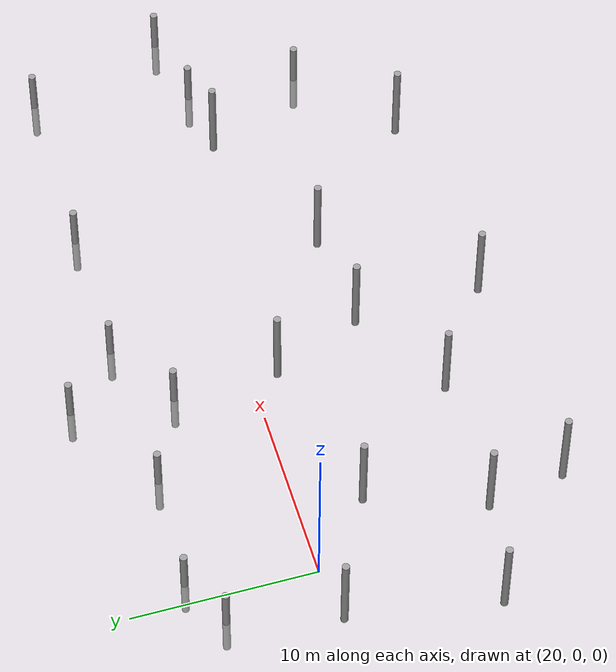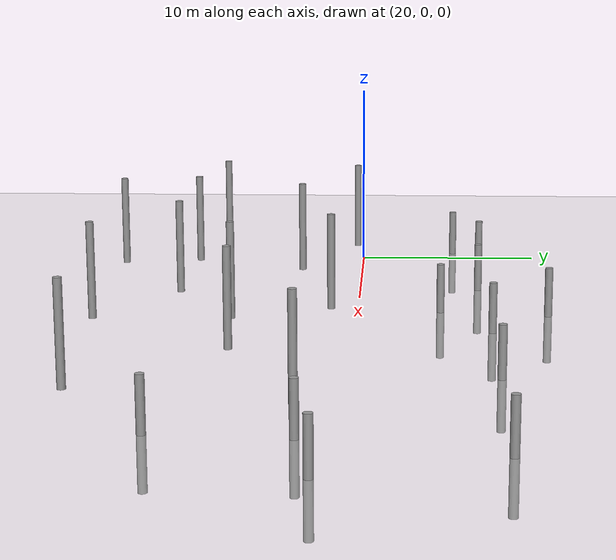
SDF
<sdf version="1.6">
 <world name="default">
  <model name="ground_plane">
   <static>1</static>
   <link name="link">
    <collision name="collision">
     <geometry><plane><normal>0 0 1</normal><size>100 100</size></plane></geometry>
     <surface><friction><ode><mu>100</mu><mu2>50</mu2></ode></friction></surface>
    </collision>
    <visual name="visual">
     <cast_shadows>0</cast_shadows>
     <geometry><plane><normal>0 0 1</normal><size>100 100</size></plane></geometry>
     <material>
      <script><uri>file://media/materials/scripts/gazebo.material</uri><name>Gazebo/Grey</name></script>
     </material>
    </visual>
   </link>
  </model>
  <model name="empty_pillars_3">
   <model name="empty_pillar_clone_43">
    <link name="link">
     <inertial>
      <mass>1</mass>
      <inertia><ixx>0.145833</ixx><ixy>0</ixy><ixz>0</ixz><iyy>0.145833</iyy><iyz>0</iyz><izz>0.125</izz></inertia>
     </inertial>
     <visual name="visual">
      <geometry><cylinder><radius>0.2</radius><length>5</length></cylinder></geometry>
      <material>
       <script><name>Gazebo/Grey</name><uri>file://media/materials/scripts/gazebo.material</uri></script>
       <shader type="vertex"><normal_map>__default__</normal_map></shader>
       <ambient>0.3 0.3 0.3 1</ambient>
       <diffuse>0.7 0.7 0.7 1</diffuse>
       <specular>0.01 0.01 0.01 1</specular>
       <emissive>0 0 0 1</emissive>
      </material>
     </visual>
     <collision name="collision">
      <geometry><cylinder><radius>0.05</radius><length>5</length></cylinder></geometry>
      <surface>
       <friction>
        <ode><mu>1</mu><mu2>1</mu2><fdir1>0 0 0</fdir1><slip1>0</slip1><slip2>0</slip2></ode>
        <torsional>
         <coefficient>1</coefficient>
         <patch_radius>0</patch_radius>
         <surface_radius>0</surface_radius>
         <use_patch_radius>1</use_patch_radius>
         <ode><slip>0</slip></ode>
        </torsional>
       </friction>
       <bounce><restitution_coefficient>0</restitution_coefficient><threshold>1e+06</threshold></bounce>
       <contact>
        <collide_without_contact>0</collide_without_contact>
        <collide_without_contact_bitmask>1</collide_without_contact_bitmask>
        <collide_bitmask>1</collide_bitmask>
        <ode>
         <soft_cfm>0</soft_cfm>
         <soft_erp>0.2</soft_erp>
         <kp>1e+13</kp>
         <kd>1</kd>
         <max_vel>0.01</max_vel>
         <min_depth>0</min_depth>
        </ode>
        <bullet>
         <split_impulse>1</split_impulse>
         <split_impulse_penetration_threshold>-0.01</split_impulse_penetration_threshold>
         <soft_cfm>0</soft_cfm>
         <soft_erp>0.2</soft_erp>
         <kp>1e+13</kp>
         <kd>1</kd>
        </bullet>
       </contact>
      </surface>
     </collision>
    </link>
    <static>0</static>
    <pose>-19.7613 -21.8307 0 0 -0 0</pose>
   </model>
   <static>0</static>
   <pose>74.2615 28.3982 0 0 -0 0</pose>
  </model>
  <model name="empty_pillars_4">
   <model name="empty_pillar_clone_11">
    <link name="link">
     <inertial>
      <mass>1</mass>
      <inertia><ixx>0.145833</ixx><ixy>0</ixy><ixz>0</ixz><iyy>0.145833</iyy><iyz>0</iyz><izz>0.125</izz></inertia>
     </inertial>
     <visual name="visual">
      <geometry><cylinder><radius>0.2</radius><length>5</length></cylinder></geometry>
      <material>
       <script><name>Gazebo/Grey</name><uri>file://media/materials/scripts/gazebo.material</uri></script>
       <shader type="vertex"><normal_map>__default__</normal_map></shader>
       <ambient>0.3 0.3 0.3 1</ambient>
       <diffuse>0.7 0.7 0.7 1</diffuse>
       <specular>0.01 0.01 0.01 1</specular>
       <emissive>0 0 0 1</emissive>
      </material>
     </visual>
     <collision name="collision">
      <geometry><cylinder><radius>0.05</radius><length>5</length></cylinder></geometry>
      <surface>
       <friction>
        <ode><mu>1</mu><mu2>1</mu2><fdir1>0 0 0</fdir1><slip1>0</slip1><slip2>0</slip2></ode>
        <torsional>
         <coefficient>1</coefficient>
         <patch_radius>0</patch_radius>
         <surface_radius>0</surface_radius>
         <use_patch_radius>1</use_patch_radius>
         <ode><slip>0</slip></ode>
        </torsional>
       </friction>
       <bounce><restitution_coefficient>0</restitution_coefficient><threshold>1e+06</threshold></bounce>
       <contact>
        <collide_without_contact>0</collide_without_contact>
        <collide_without_contact_bitmask>1</collide_without_contact_bitmask>
        <collide_bitmask>1</collide_bitmask>
        <ode>
         <soft_cfm>0</soft_cfm>
         <soft_erp>0.2</soft_erp>
         <kp>1e+13</kp>
         <kd>1</kd>
         <max_vel>0.01</max_vel>
         <min_depth>0</min_depth>
        </ode>
        <bullet>
         <split_impulse>1</split_impulse>
         <split_impulse_penetration_threshold>-0.01</split_impulse_penetration_threshold>
         <soft_cfm>0</soft_cfm>
         <soft_erp>0.2</soft_erp>
         <kp>1e+13</kp>
         <kd>1</kd>
        </bullet>
       </contact>
      </surface>
     </collision>
    </link>
    <static>0</static>
    <pose>7.98536 -17.8403 0 0 -0 0</pose>
   </model>
   <model name="empty_pillar_clone_12">
    <link name="link">
     <inertial>
      <mass>1</mass>
      <inertia><ixx>0.145833</ixx><ixy>0</ixy><ixz>0</ixz><iyy>0.145833</iyy><iyz>0</iyz><izz>0.125</izz></inertia>
     </inertial>
     <visual name="visual">
      <geometry><cylinder><radius>0.2</radius><length>5</length></cylinder></geometry>
      <material>
       <script><name>Gazebo/Grey</name><uri>file://media/materials/scripts/gazebo.material</uri></script>
       <shader type="vertex"><normal_map>__default__</normal_map></shader>
       <ambient>0.3 0.3 0.3 1</ambient>
       <diffuse>0.7 0.7 0.7 1</diffuse>
       <specular>0.01 0.01 0.01 1</specular>
       <emissive>0 0 0 1</emissive>
      </material>
     </visual>
     <collision name="collision">
      <geometry><cylinder><radius>0.05</radius><length>5</length></cylinder></geometry>
      <surface>
       <friction>
        <ode><mu>1</mu><mu2>1</mu2><fdir1>0 0 0</fdir1><slip1>0</slip1><slip2>0</slip2></ode>
        <torsional>
         <coefficient>1</coefficient>
         <patch_radius>0</patch_radius>
         <surface_radius>0</surface_radius>
         <use_patch_radius>1</use_patch_radius>
         <ode><slip>0</slip></ode>
        </torsional>
       </friction>
       <bounce><restitution_coefficient>0</restitution_coefficient><threshold>1e+06</threshold></bounce>
       <contact>
        <collide_without_contact>0</collide_without_contact>
        <collide_without_contact_bitmask>1</collide_without_contact_bitmask>
        <collide_bitmask>1</collide_bitmask>
        <ode>
         <soft_cfm>0</soft_cfm>
         <soft_erp>0.2</soft_erp>
         <kp>1e+13</kp>
         <kd>1</kd>
         <max_vel>0.01</max_vel>
         <min_depth>0</min_depth>
        </ode>
        <bullet>
         <split_impulse>1</split_impulse>
         <split_impulse_penetration_threshold>-0.01</split_impulse_penetration_threshold>
         <soft_cfm>0</soft_cfm>
         <soft_erp>0.2</soft_erp>
         <kp>1e+13</kp>
         <kd>1</kd>
        </bullet>
       </contact>
      </surface>
     </collision>
    </link>
    <static>0</static>
    <pose>-4.01464 -20.8403 0 0 -0 0</pose>
   </model>
   <model name="empty_pillar_clone_34">
    <link name="link">
     <inertial>
      <mass>1</mass>
      <inertia><ixx>0.145833</ixx><ixy>0</ixy><ixz>0</ixz><iyy>0.145833</iyy><iyz>0</iyz><izz>0.125</izz></inertia>
     </inertial>
     <visual name="visual">
      <geometry><cylinder><radius>0.2</radius><length>5</length></cylinder></geometry>
      <material>
       <script><name>Gazebo/Grey</name><uri>file://media/materials/scripts/gazebo.material</uri></script>
       <shader type="vertex"><normal_map>__default__</normal_map></shader>
       <ambient>0.3 0.3 0.3 1</ambient>
       <diffuse>0.7 0.7 0.7 1</diffuse>
       <specular>0.01 0.01 0.01 1</specular>
       <emissive>0 0 0 1</emissive>
      </material>
     </visual>
     <collision name="collision">
      <geometry><cylinder><radius>0.05</radius><length>5</length></cylinder></geometry>
      <surface>
       <friction>
        <ode><mu>1</mu><mu2>1</mu2><fdir1>0 0 0</fdir1><slip1>0</slip1><slip2>0</slip2></ode>
        <torsional>
         <coefficient>1</coefficient>
         <patch_radius>0</patch_radius>
         <surface_radius>0</surface_radius>
         <use_patch_radius>1</use_patch_radius>
         <ode><slip>0</slip></ode>
        </torsional>
       </friction>
       <bounce><restitution_coefficient>0</restitution_coefficient><threshold>1e+06</threshold></bounce>
       <contact>
        <collide_without_contact>0</collide_without_contact>
        <collide_without_contact_bitmask>1</collide_without_contact_bitmask>
        <collide_bitmask>1</collide_bitmask>
        <ode>
         <soft_cfm>0</soft_cfm>
         <soft_erp>0.2</soft_erp>
         <kp>1e+13</kp>
         <kd>1</kd>
         <max_vel>0.01</max_vel>
         <min_depth>0</min_depth>
        </ode>
        <bullet>
         <split_impulse>1</split_impulse>
         <split_impulse_penetration_threshold>-0.01</split_impulse_penetration_threshold>
         <soft_cfm>0</soft_cfm>
         <soft_erp>0.2</soft_erp>
         <kp>1e+13</kp>
         <kd>1</kd>
        </bullet>
       </contact>
      </surface>
     </collision>
    </link>
    <static>0</static>
    <pose>19.0861 -20.8946 0 0 -0 0</pose>
   </model>
   <model name="empty_pillar_clone_44">
    <link name="link">
     <inertial>
      <mass>1</mass>
      <inertia><ixx>0.145833</ixx><ixy>0</ixy><ixz>0</ixz><iyy>0.145833</iyy><iyz>0</iyz><izz>0.125</izz></inertia>
     </inertial>
     <visual name="visual">
      <geometry><cylinder><radius>0.2</radius><length>5</length></cylinder></geometry>
      <material>
       <script><name>Gazebo/Grey</name><uri>file://media/materials/scripts/gazebo.material</uri></script>
       <shader type="vertex"><normal_map>__default__</normal_map></shader>
       <ambient>0.3 0.3 0.3 1</ambient>
       <diffuse>0.7 0.7 0.7 1</diffuse>
       <specular>0.01 0.01 0.01 1</specular>
       <emissive>0 0 0 1</emissive>
      </material>
     </visual>
     <collision name="collision">
      <geometry><cylinder><radius>0.05</radius><length>5</length></cylinder></geometry>
      <surface>
       <friction>
        <ode><mu>1</mu><mu2>1</mu2><fdir1>0 0 0</fdir1><slip1>0</slip1><slip2>0</slip2></ode>
        <torsional>
         <coefficient>1</coefficient>
         <patch_radius>0</patch_radius>
         <surface_radius>0</surface_radius>
         <use_patch_radius>1</use_patch_radius>
         <ode><slip>0</slip></ode>
        </torsional>
       </friction>
       <bounce><restitution_coefficient>0</restitution_coefficient><threshold>1e+06</threshold></bounce>
       <contact>
        <collide_without_contact>0</collide_without_contact>
        <collide_without_contact_bitmask>1</collide_without_contact_bitmask>
        <collide_bitmask>1</collide_bitmask>
        <ode>
         <soft_cfm>0</soft_cfm>
         <soft_erp>0.2</soft_erp>
         <kp>1e+13</kp>
         <kd>1</kd>
         <max_vel>0.01</max_vel>
         <min_depth>0</min_depth>
        </ode>
        <bullet>
         <split_impulse>1</split_impulse>
         <split_impulse_penetration_threshold>-0.01</split_impulse_penetration_threshold>
         <soft_cfm>0</soft_cfm>
         <soft_erp>0.2</soft_erp>
         <kp>1e+13</kp>
         <kd>1</kd>
        </bullet>
       </contact>
      </surface>
     </collision>
    </link>
    <static>0</static>
    <pose>-6.78285 -22.2729 0 0 -0 0</pose>
   </model>
   <model name="empty_pillar_clone_46">
    <link name="link">
     <inertial>
      <mass>1</mass>
      <inertia><ixx>0.145833</ixx><ixy>0</ixy><ixz>0</ixz><iyy>0.145833</iyy><iyz>0</iyz><izz>0.125</izz></inertia>
     </inertial>
     <visual name="visual">
      <geometry><cylinder><radius>0.2</radius><length>5</length></cylinder></geometry>
      <material>
       <script><name>Gazebo/Grey</name><uri>file://media/materials/scripts/gazebo.material</uri></script>
       <shader type="vertex"><normal_map>__default__</normal_map></shader>
       <ambient>0.3 0.3 0.3 1</ambient>
       <diffuse>0.7 0.7 0.7 1</diffuse>
       <specular>0.01 0.01 0.01 1</specular>
       <emissive>0 0 0 1</emissive>
      </material>
     </visual>
     <collision name="collision">
      <geometry><cylinder><radius>0.05</radius><length>5</length></cylinder></geometry>
      <surface>
       <friction>
        <ode><mu>1</mu><mu2>1</mu2><fdir1>0 0 0</fdir1><slip1>0</slip1><slip2>0</slip2></ode>
        <torsional>
         <coefficient>1</coefficient>
         <patch_radius>0</patch_radius>
         <surface_radius>0</surface_radius>
         <use_patch_radius>1</use_patch_radius>
         <ode><slip>0</slip></ode>
        </torsional>
       </friction>
       <bounce><restitution_coefficient>0</restitution_coefficient><threshold>1e+06</threshold></bounce>
       <contact>
        <collide_without_contact>0</collide_without_contact>
        <collide_without_contact_bitmask>1</collide_without_contact_bitmask>
        <collide_bitmask>1</collide_bitmask>
        <ode>
         <soft_cfm>0</soft_cfm>
         <soft_erp>0.2</soft_erp>
         <kp>1e+13</kp>
         <kd>1</kd>
         <max_vel>0.01</max_vel>
         <min_depth>0</min_depth>
        </ode>
        <bullet>
         <split_impulse>1</split_impulse>
         <split_impulse_penetration_threshold>-0.01</split_impulse_penetration_threshold>
         <soft_cfm>0</soft_cfm>
         <soft_erp>0.2</soft_erp>
         <kp>1e+13</kp>
         <kd>1</kd>
        </bullet>
       </contact>
      </surface>
     </collision>
    </link>
    <static>0</static>
    <pose>2.45033 -21.185 0 0 -0 0</pose>
   </model>
   <model name="empty_pillar_clone_52">
    <link name="link">
     <inertial>
      <mass>1</mass>
      <inertia><ixx>0.145833</ixx><ixy>0</ixy><ixz>0</ixz><iyy>0.145833</iyy><iyz>0</iyz><izz>0.125</izz></inertia>
     </inertial>
     <visual name="visual">
      <geometry><cylinder><radius>0.2</radius><length>5</length></cylinder></geometry>
      <material>
       <script><name>Gazebo/Grey</name><uri>file://media/materials/scripts/gazebo.material</uri></script>
       <shader type="vertex"><normal_map>__default__</normal_map></shader>
       <ambient>0.3 0.3 0.3 1</ambient>
       <diffuse>0.7 0.7 0.7 1</diffuse>
       <specular>0.01 0.01 0.01 1</specular>
       <emissive>0 0 0 1</emissive>
      </material>
     </visual>
     <collision name="collision">
      <geometry><cylinder><radius>0.05</radius><length>5</length></cylinder></geometry>
      <surface>
       <friction>
        <ode><mu>1</mu><mu2>1</mu2><fdir1>0 0 0</fdir1><slip1>0</slip1><slip2>0</slip2></ode>
        <torsional>
         <coefficient>1</coefficient>
         <patch_radius>0</patch_radius>
         <surface_radius>0</surface_radius>
         <use_patch_radius>1</use_patch_radius>
         <ode><slip>0</slip></ode>
        </torsional>
       </friction>
       <bounce><restitution_coefficient>0</restitution_coefficient><threshold>1e+06</threshold></bounce>
       <contact>
        <collide_without_contact>0</collide_without_contact>
        <collide_without_contact_bitmask>1</collide_without_contact_bitmask>
        <collide_bitmask>1</collide_bitmask>
        <ode>
         <soft_cfm>0</soft_cfm>
         <soft_erp>0.2</soft_erp>
         <kp>1e+13</kp>
         <kd>1</kd>
         <max_vel>0.01</max_vel>
         <min_depth>0</min_depth>
        </ode>
        <bullet>
         <split_impulse>1</split_impulse>
         <split_impulse_penetration_threshold>-0.01</split_impulse_penetration_threshold>
         <soft_cfm>0</soft_cfm>
         <soft_erp>0.2</soft_erp>
         <kp>1e+13</kp>
         <kd>1</kd>
        </bullet>
       </contact>
      </surface>
     </collision>
    </link>
    <static>0</static>
    <pose>11.2833 -20.8743 0 0 -0 0</pose>
   </model>
   <model name="empty_pillar_clone_53">
    <link name="link">
     <inertial>
      <mass>1</mass>
      <inertia><ixx>0.145833</ixx><ixy>0</ixy><ixz>0</ixz><iyy>0.145833</iyy><iyz>0</iyz><izz>0.125</izz></inertia>
     </inertial>
     <visual name="visual">
      <geometry><cylinder><radius>0.2</radius><length>5</length></cylinder></geometry>
      <material>
       <script><name>Gazebo/Grey</name><uri>file://media/materials/scripts/gazebo.material</uri></script>
       <shader type="vertex"><normal_map>__default__</normal_map></shader>
       <ambient>0.3 0.3 0.3 1</ambient>
       <diffuse>0.7 0.7 0.7 1</diffuse>
       <specular>0.01 0.01 0.01 1</specular>
       <emissive>0 0 0 1</emissive>
      </material>
     </visual>
     <collision name="collision">
      <geometry><cylinder><radius>0.05</radius><length>5</length></cylinder></geometry>
      <surface>
       <friction>
        <ode><mu>1</mu><mu2>1</mu2><fdir1>0 0 0</fdir1><slip1>0</slip1><slip2>0</slip2></ode>
        <torsional>
         <coefficient>1</coefficient>
         <patch_radius>0</patch_radius>
         <surface_radius>0</surface_radius>
         <use_patch_radius>1</use_patch_radius>
         <ode><slip>0</slip></ode>
        </torsional>
       </friction>
       <bounce><restitution_coefficient>0</restitution_coefficient><threshold>1e+06</threshold></bounce>
       <contact>
        <collide_without_contact>0</collide_without_contact>
        <collide_without_contact_bitmask>1</collide_without_contact_bitmask>
        <collide_bitmask>1</collide_bitmask>
        <ode>
         <soft_cfm>0</soft_cfm>
         <soft_erp>0.2</soft_erp>
         <kp>1e+13</kp>
         <kd>1</kd>
         <max_vel>0.01</max_vel>
         <min_depth>0</min_depth>
        </ode>
        <bullet>
         <split_impulse>1</split_impulse>
         <split_impulse_penetration_threshold>-0.01</split_impulse_penetration_threshold>
         <soft_cfm>0</soft_cfm>
         <soft_erp>0.2</soft_erp>
         <kp>1e+13</kp>
         <kd>1</kd>
        </bullet>
       </contact>
      </surface>
     </collision>
    </link>
    <static>0</static>
    <pose>7.32522 -23.3523 0 0 -0 0</pose>
   </model>
   <static>0</static>
   <pose>25.2837 27.6164 0 0 -0 0</pose>
  </model>
  <model name="empty_pillars_9">
   <model name="empty_pillar_clone_16">
    <link name="link">
     <inertial>
      <mass>1</mass>
      <inertia><ixx>0.145833</ixx><ixy>0</ixy><ixz>0</ixz><iyy>0.145833</iyy><iyz>0</iyz><izz>0.125</izz></inertia>
     </inertial>
     <visual name="visual">
      <geometry><cylinder><radius>0.2</radius><length>5</length></cylinder></geometry>
      <material>
       <script><name>Gazebo/Grey</name><uri>file://media/materials/scripts/gazebo.material</uri></script>
       <shader type="vertex"><normal_map>__default__</normal_map></shader>
       <ambient>0.3 0.3 0.3 1</ambient>
       <diffuse>0.7 0.7 0.7 1</diffuse>
       <specular>0.01 0.01 0.01 1</specular>
       <emissive>0 0 0 1</emissive>
      </material>
     </visual>
     <collision name="collision">
      <geometry><cylinder><radius>0.05</radius><length>5</length></cylinder></geometry>
      <surface>
       <friction>
        <ode><mu>1</mu><mu2>1</mu2><fdir1>0 0 0</fdir1><slip1>0</slip1><slip2>0</slip2></ode>
        <torsional>
         <coefficient>1</coefficient>
         <patch_radius>0</patch_radius>
         <surface_radius>0</surface_radius>
         <use_patch_radius>1</use_patch_radius>
         <ode><slip>0</slip></ode>
        </torsional>
       </friction>
       <bounce><restitution_coefficient>0</restitution_coefficient><threshold>1e+06</threshold></bounce>
       <contact>
        <collide_without_contact>0</collide_without_contact>
        <collide_without_contact_bitmask>1</collide_without_contact_bitmask>
        <collide_bitmask>1</collide_bitmask>
        <ode>
         <soft_cfm>0</soft_cfm>
         <soft_erp>0.2</soft_erp>
         <kp>1e+13</kp>
         <kd>1</kd>
         <max_vel>0.01</max_vel>
         <min_depth>0</min_depth>
        </ode>
        <bullet>
         <split_impulse>1</split_impulse>
         <split_impulse_penetration_threshold>-0.01</split_impulse_penetration_threshold>
         <soft_cfm>0</soft_cfm>
         <soft_erp>0.2</soft_erp>
         <kp>1e+13</kp>
         <kd>1</kd>
        </bullet>
       </contact>
      </surface>
     </collision>
    </link>
    <static>0</static>
    <pose>-9.20789 13.0504 0 0 -0 0</pose>
   </model>
   <model name="empty_pillar_clone_23">
    <link name="link">
     <inertial>
      <mass>1</mass>
      <inertia><ixx>0.145833</ixx><ixy>0</ixy><ixz>0</ixz><iyy>0.145833</iyy><iyz>0</iyz><izz>0.125</izz></inertia>
     </inertial>
     <visual name="visual">
      <geometry><cylinder><radius>0.2</radius><length>5</length></cylinder></geometry>
      <material>
       <script><name>Gazebo/Grey</name><uri>file://media/materials/scripts/gazebo.material</uri></script>
       <shader type="vertex"><normal_map>__default__</normal_map></shader>
       <ambient>0.3 0.3 0.3 1</ambient>
       <diffuse>0.7 0.7 0.7 1</diffuse>
       <specular>0.01 0.01 0.01 1</specular>
       <emissive>0 0 0 1</emissive>
      </material>
     </visual>
     <collision name="collision">
      <geometry><cylinder><radius>0.05</radius><length>5</length></cylinder></geometry>
      <surface>
       <friction>
        <ode><mu>1</mu><mu2>1</mu2><fdir1>0 0 0</fdir1><slip1>0</slip1><slip2>0</slip2></ode>
        <torsional>
         <coefficient>1</coefficient>
         <patch_radius>0</patch_radius>
         <surface_radius>0</surface_radius>
         <use_patch_radius>1</use_patch_radius>
         <ode><slip>0</slip></ode>
        </torsional>
       </friction>
       <bounce><restitution_coefficient>0</restitution_coefficient><threshold>1e+06</threshold></bounce>
       <contact>
        <collide_without_contact>0</collide_without_contact>
        <collide_without_contact_bitmask>1</collide_without_contact_bitmask>
        <collide_bitmask>1</collide_bitmask>
        <ode>
         <soft_cfm>0</soft_cfm>
         <soft_erp>0.2</soft_erp>
         <kp>1e+13</kp>
         <kd>1</kd>
         <max_vel>0.01</max_vel>
         <min_depth>0</min_depth>
        </ode>
        <bullet>
         <split_impulse>1</split_impulse>
         <split_impulse_penetration_threshold>-0.01</split_impulse_penetration_threshold>
         <soft_cfm>0</soft_cfm>
         <soft_erp>0.2</soft_erp>
         <kp>1e+13</kp>
         <kd>1</kd>
        </bullet>
       </contact>
      </surface>
     </collision>
    </link>
    <static>0</static>
    <pose>-1.21984 18.1273 0 0 -0 0</pose>
   </model>
   <model name="empty_pillar_clone_24">
    <link name="link">
     <inertial>
      <mass>1</mass>
      <inertia><ixx>0.145833</ixx><ixy>0</ixy><ixz>0</ixz><iyy>0.145833</iyy><iyz>0</iyz><izz>0.125</izz></inertia>
     </inertial>
     <visual name="visual">
      <geometry><cylinder><radius>0.2</radius><length>5</length></cylinder></geometry>
      <material>
       <script><name>Gazebo/Grey</name><uri>file://media/materials/scripts/gazebo.material</uri></script>
       <shader type="vertex"><normal_map>__default__</normal_map></shader>
       <ambient>0.3 0.3 0.3 1</ambient>
       <diffuse>0.7 0.7 0.7 1</diffuse>
       <specular>0.01 0.01 0.01 1</specular>
       <emissive>0 0 0 1</emissive>
      </material>
     </visual>
     <collision name="collision">
      <geometry><cylinder><radius>0.05</radius><length>5</length></cylinder></geometry>
      <surface>
       <friction>
        <ode><mu>1</mu><mu2>1</mu2><fdir1>0 0 0</fdir1><slip1>0</slip1><slip2>0</slip2></ode>
        <torsional>
         <coefficient>1</coefficient>
         <patch_radius>0</patch_radius>
         <surface_radius>0</surface_radius>
         <use_patch_radius>1</use_patch_radius>
         <ode><slip>0</slip></ode>
        </torsional>
       </friction>
       <bounce><restitution_coefficient>0</restitution_coefficient><threshold>1e+06</threshold></bounce>
       <contact>
        <collide_without_contact>0</collide_without_contact>
        <collide_without_contact_bitmask>1</collide_without_contact_bitmask>
        <collide_bitmask>1</collide_bitmask>
        <ode>
         <soft_cfm>0</soft_cfm>
         <soft_erp>0.2</soft_erp>
         <kp>1e+13</kp>
         <kd>1</kd>
         <max_vel>0.01</max_vel>
         <min_depth>0</min_depth>
        </ode>
        <bullet>
         <split_impulse>1</split_impulse>
         <split_impulse_penetration_threshold>-0.01</split_impulse_penetration_threshold>
         <soft_cfm>0</soft_cfm>
         <soft_erp>0.2</soft_erp>
         <kp>1e+13</kp>
         <kd>1</kd>
        </bullet>
       </contact>
      </surface>
     </collision>
    </link>
    <static>0</static>
    <pose>-3.46957 11.9413 0 0 -0 0</pose>
   </model>
   <model name="empty_pillar_clone_25">
    <link name="link">
     <inertial>
      <mass>1</mass>
      <inertia><ixx>0.145833</ixx><ixy>0</ixy><ixz>0</ixz><iyy>0.145833</iyy><iyz>0</iyz><izz>0.125</izz></inertia>
     </inertial>
     <visual name="visual">
      <geometry><cylinder><radius>0.2</radius><length>5</length></cylinder></geometry>
      <material>
       <script><name>Gazebo/Grey</name><uri>file://media/materials/scripts/gazebo.material</uri></script>
       <shader type="vertex"><normal_map>__default__</normal_map></shader>
       <ambient>0.3 0.3 0.3 1</ambient>
       <diffuse>0.7 0.7 0.7 1</diffuse>
       <specular>0.01 0.01 0.01 1</specular>
       <emissive>0 0 0 1</emissive>
      </material>
     </visual>
     <collision name="collision">
      <geometry><cylinder><radius>0.05</radius><length>5</length></cylinder></geometry>
      <surface>
       <friction>
        <ode><mu>1</mu><mu2>1</mu2><fdir1>0 0 0</fdir1><slip1>0</slip1><slip2>0</slip2></ode>
        <torsional>
         <coefficient>1</coefficient>
         <patch_radius>0</patch_radius>
         <surface_radius>0</surface_radius>
         <use_patch_radius>1</use_patch_radius>
         <ode><slip>0</slip></ode>
        </torsional>
       </friction>
       <bounce><restitution_coefficient>0</restitution_coefficient><threshold>1e+06</threshold></bounce>
       <contact>
        <collide_without_contact>0</collide_without_contact>
        <collide_without_contact_bitmask>1</collide_without_contact_bitmask>
        <collide_bitmask>1</collide_bitmask>
        <ode>
         <soft_cfm>0</soft_cfm>
         <soft_erp>0.2</soft_erp>
         <kp>1e+13</kp>
         <kd>1</kd>
         <max_vel>0.01</max_vel>
         <min_depth>0</min_depth>
        </ode>
        <bullet>
         <split_impulse>1</split_impulse>
         <split_impulse_penetration_threshold>-0.01</split_impulse_penetration_threshold>
         <soft_cfm>0</soft_cfm>
         <soft_erp>0.2</soft_erp>
         <kp>1e+13</kp>
         <kd>1</kd>
        </bullet>
       </contact>
      </surface>
     </collision>
    </link>
    <static>0</static>
    <pose>-7.86239 21.1314 0 0 -0 0</pose>
   </model>
   <model name="empty_pillar_clone_26">
    <link name="link">
     <inertial>
      <mass>1</mass>
      <inertia><ixx>0.145833</ixx><ixy>0</ixy><ixz>0</ixz><iyy>0.145833</iyy><iyz>0</iyz><izz>0.125</izz></inertia>
     </inertial>
     <visual name="visual">
      <geometry><cylinder><radius>0.2</radius><length>5</length></cylinder></geometry>
      <material>
       <script><name>Gazebo/Grey</name><uri>file://media/materials/scripts/gazebo.material</uri></script>
       <shader type="vertex"><normal_map>__default__</normal_map></shader>
       <ambient>0.3 0.3 0.3 1</ambient>
       <diffuse>0.7 0.7 0.7 1</diffuse>
       <specular>0.01 0.01 0.01 1</specular>
       <emissive>0 0 0 1</emissive>
      </material>
     </visual>
     <collision name="collision">
      <geometry><cylinder><radius>0.05</radius><length>5</length></cylinder></geometry>
      <surface>
       <friction>
        <ode><mu>1</mu><mu2>1</mu2><fdir1>0 0 0</fdir1><slip1>0</slip1><slip2>0</slip2></ode>
        <torsional>
         <coefficient>1</coefficient>
         <patch_radius>0</patch_radius>
         <surface_radius>0</surface_radius>
         <use_patch_radius>1</use_patch_radius>
         <ode><slip>0</slip></ode>
        </torsional>
       </friction>
       <bounce><restitution_coefficient>0</restitution_coefficient><threshold>1e+06</threshold></bounce>
       <contact>
        <collide_without_contact>0</collide_without_contact>
        <collide_without_contact_bitmask>1</collide_without_contact_bitmask>
        <collide_bitmask>1</collide_bitmask>
        <ode>
         <soft_cfm>0</soft_cfm>
         <soft_erp>0.2</soft_erp>
         <kp>1e+13</kp>
         <kd>1</kd>
         <max_vel>0.01</max_vel>
         <min_depth>0</min_depth>
        </ode>
        <bullet>
         <split_impulse>1</split_impulse>
         <split_impulse_penetration_threshold>-0.01</split_impulse_penetration_threshold>
         <soft_cfm>0</soft_cfm>
         <soft_erp>0.2</soft_erp>
         <kp>1e+13</kp>
         <kd>1</kd>
        </bullet>
       </contact>
      </surface>
     </collision>
    </link>
    <static>0</static>
    <pose>7.70652 20.1444 0 0 -0 0</pose>
   </model>
   <model name="empty_pillar_clone_27">
    <link name="link">
     <inertial>
      <mass>1</mass>
      <inertia><ixx>0.145833</ixx><ixy>0</ixy><ixz>0</ixz><iyy>0.145833</iyy><iyz>0</iyz><izz>0.125</izz></inertia>
     </inertial>
     <visual name="visual">
      <geometry><cylinder><radius>0.2</radius><length>5</length></cylinder></geometry>
      <material>
       <script><name>Gazebo/Grey</name><uri>file://media/materials/scripts/gazebo.material</uri></script>
       <shader type="vertex"><normal_map>__default__</normal_map></shader>
       <ambient>0.3 0.3 0.3 1</ambient>
       <diffuse>0.7 0.7 0.7 1</diffuse>
       <specular>0.01 0.01 0.01 1</specular>
       <emissive>0 0 0 1</emissive>
      </material>
     </visual>
     <collision name="collision">
      <geometry><cylinder><radius>0.05</radius><length>5</length></cylinder></geometry>
      <surface>
       <friction>
        <ode><mu>1</mu><mu2>1</mu2><fdir1>0 0 0</fdir1><slip1>0</slip1><slip2>0</slip2></ode>
        <torsional>
         <coefficient>1</coefficient>
         <patch_radius>0</patch_radius>
         <surface_radius>0</surface_radius>
         <use_patch_radius>1</use_patch_radius>
         <ode><slip>0</slip></ode>
        </torsional>
       </friction>
       <bounce><restitution_coefficient>0</restitution_coefficient><threshold>1e+06</threshold></bounce>
       <contact>
        <collide_without_contact>0</collide_without_contact>
        <collide_without_contact_bitmask>1</collide_without_contact_bitmask>
        <collide_bitmask>1</collide_bitmask>
        <ode>
         <soft_cfm>0</soft_cfm>
         <soft_erp>0.2</soft_erp>
         <kp>1e+13</kp>
         <kd>1</kd>
         <max_vel>0.01</max_vel>
         <min_depth>0</min_depth>
        </ode>
        <bullet>
         <split_impulse>1</split_impulse>
         <split_impulse_penetration_threshold>-0.01</split_impulse_penetration_threshold>
         <soft_cfm>0</soft_cfm>
         <soft_erp>0.2</soft_erp>
         <kp>1e+13</kp>
         <kd>1</kd>
        </bullet>
       </contact>
      </surface>
     </collision>
    </link>
    <static>0</static>
    <pose>4.32163 11.823 0 0 -0 0</pose>
   </model>
   <model name="empty_pillar_clone_28">
    <link name="link">
     <inertial>
      <mass>1</mass>
      <inertia><ixx>0.145833</ixx><ixy>0</ixy><ixz>0</ixz><iyy>0.145833</iyy><iyz>0</iyz><izz>0.125</izz></inertia>
     </inertial>
     <visual name="visual">
      <geometry><cylinder><radius>0.2</radius><length>5</length></cylinder></geometry>
      <material>
       <script><name>Gazebo/Grey</name><uri>file://media/materials/scripts/gazebo.material</uri></script>
       <shader type="vertex"><normal_map>__default__</normal_map></shader>
       <ambient>0.3 0.3 0.3 1</ambient>
       <diffuse>0.7 0.7 0.7 1</diffuse>
       <specular>0.01 0.01 0.01 1</specular>
       <emissive>0 0 0 1</emissive>
      </material>
     </visual>
     <collision name="collision">
      <geometry><cylinder><radius>0.05</radius><length>5</length></cylinder></geometry>
      <surface>
       <friction>
        <ode><mu>1</mu><mu2>1</mu2><fdir1>0 0 0</fdir1><slip1>0</slip1><slip2>0</slip2></ode>
        <torsional>
         <coefficient>1</coefficient>
         <patch_radius>0</patch_radius>
         <surface_radius>0</surface_radius>
         <use_patch_radius>1</use_patch_radius>
         <ode><slip>0</slip></ode>
        </torsional>
       </friction>
       <bounce><restitution_coefficient>0</restitution_coefficient><threshold>1e+06</threshold></bounce>
       <contact>
        <collide_without_contact>0</collide_without_contact>
        <collide_without_contact_bitmask>1</collide_without_contact_bitmask>
        <collide_bitmask>1</collide_bitmask>
        <ode>
         <soft_cfm>0</soft_cfm>
         <soft_erp>0.2</soft_erp>
         <kp>1e+13</kp>
         <kd>1</kd>
         <max_vel>0.01</max_vel>
         <min_depth>0</min_depth>
        </ode>
        <bullet>
         <split_impulse>1</split_impulse>
         <split_impulse_penetration_threshold>-0.01</split_impulse_penetration_threshold>
         <soft_cfm>0</soft_cfm>
         <soft_erp>0.2</soft_erp>
         <kp>1e+13</kp>
         <kd>1</kd>
        </bullet>
       </contact>
      </surface>
     </collision>
    </link>
    <static>0</static>
    <pose>15.5447 15.5867 0 0 -0 0</pose>
   </model>
   <model name="empty_pillar_clone_29">
    <link name="link">
     <inertial>
      <mass>1</mass>
      <inertia><ixx>0.145833</ixx><ixy>0</ixy><ixz>0</ixz><iyy>0.145833</iyy><iyz>0</iyz><izz>0.125</izz></inertia>
     </inertial>
     <visual name="visual">
      <geometry><cylinder><radius>0.2</radius><length>5</length></cylinder></geometry>
      <material>
       <script><name>Gazebo/Grey</name><uri>file://media/materials/scripts/gazebo.material</uri></script>
       <shader type="vertex"><normal_map>__default__</normal_map></shader>
       <ambient>0.3 0.3 0.3 1</ambient>
       <diffuse>0.7 0.7 0.7 1</diffuse>
       <specular>0.01 0.01 0.01 1</specular>
       <emissive>0 0 0 1</emissive>
      </material>
     </visual>
     <collision name="collision">
      <geometry><cylinder><radius>0.05</radius><length>5</length></cylinder></geometry>
      <surface>
       <friction>
        <ode><mu>1</mu><mu2>1</mu2><fdir1>0 0 0</fdir1><slip1>0</slip1><slip2>0</slip2></ode>
        <torsional>
         <coefficient>1</coefficient>
         <patch_radius>0</patch_radius>
         <surface_radius>0</surface_radius>
         <use_patch_radius>1</use_patch_radius>
         <ode><slip>0</slip></ode>
        </torsional>
       </friction>
       <bounce><restitution_coefficient>0</restitution_coefficient><threshold>1e+06</threshold></bounce>
       <contact>
        <collide_without_contact>0</collide_without_contact>
        <collide_without_contact_bitmask>1</collide_without_contact_bitmask>
        <collide_bitmask>1</collide_bitmask>
        <ode>
         <soft_cfm>0</soft_cfm>
         <soft_erp>0.2</soft_erp>
         <kp>1e+13</kp>
         <kd>1</kd>
         <max_vel>0.01</max_vel>
         <min_depth>0</min_depth>
        </ode>
        <bullet>
         <split_impulse>1</split_impulse>
         <split_impulse_penetration_threshold>-0.01</split_impulse_penetration_threshold>
         <soft_cfm>0</soft_cfm>
         <soft_erp>0.2</soft_erp>
         <kp>1e+13</kp>
         <kd>1</kd>
        </bullet>
       </contact>
      </surface>
     </collision>
    </link>
    <static>0</static>
    <pose>10.08 8.0876 0 0 -0 0</pose>
   </model>
   <model name="empty_pillar_clone_30">
    <link name="link">
     <inertial>
      <mass>1</mass>
      <inertia><ixx>0.145833</ixx><ixy>0</ixy><ixz>0</ixz><iyy>0.145833</iyy><iyz>0</iyz><izz>0.125</izz></inertia>
     </inertial>
     <visual name="visual">
      <geometry><cylinder><radius>0.2</radius><length>5</length></cylinder></geometry>
      <material>
       <script><name>Gazebo/Grey</name><uri>file://media/materials/scripts/gazebo.material</uri></script>
       <shader type="vertex"><normal_map>__default__</normal_map></shader>
       <ambient>0.3 0.3 0.3 1</ambient>
       <diffuse>0.7 0.7 0.7 1</diffuse>
       <specular>0.01 0.01 0.01 1</specular>
       <emissive>0 0 0 1</emissive>
      </material>
     </visual>
     <collision name="collision">
      <geometry><cylinder><radius>0.05</radius><length>5</length></cylinder></geometry>
      <surface>
       <friction>
        <ode><mu>1</mu><mu2>1</mu2><fdir1>0 0 0</fdir1><slip1>0</slip1><slip2>0</slip2></ode>
        <torsional>
         <coefficient>1</coefficient>
         <patch_radius>0</patch_radius>
         <surface_radius>0</surface_radius>
         <use_patch_radius>1</use_patch_radius>
         <ode><slip>0</slip></ode>
        </torsional>
       </friction>
       <bounce><restitution_coefficient>0</restitution_coefficient><threshold>1e+06</threshold></bounce>
       <contact>
        <collide_without_contact>0</collide_without_contact>
        <collide_without_contact_bitmask>1</collide_without_contact_bitmask>
        <collide_bitmask>1</collide_bitmask>
        <ode>
         <soft_cfm>0</soft_cfm>
         <soft_erp>0.2</soft_erp>
         <kp>1e+13</kp>
         <kd>1</kd>
         <max_vel>0.01</max_vel>
         <min_depth>0</min_depth>
        </ode>
        <bullet>
         <split_impulse>1</split_impulse>
         <split_impulse_penetration_threshold>-0.01</split_impulse_penetration_threshold>
         <soft_cfm>0</soft_cfm>
         <soft_erp>0.2</soft_erp>
         <kp>1e+13</kp>
         <kd>1</kd>
        </bullet>
       </contact>
      </surface>
     </collision>
    </link>
    <static>0</static>
    <pose>23.752 19.2231 0 0 -0 0</pose>
   </model>
   <model name="empty_pillar_clone_31">
    <link name="link">
     <inertial>
      <mass>1</mass>
      <inertia><ixx>0.145833</ixx><ixy>0</ixy><ixz>0</ixz><iyy>0.145833</iyy><iyz>0</iyz><izz>0.125</izz></inertia>
     </inertial>
     <visual name="visual">
      <geometry><cylinder><radius>0.2</radius><length>5</length></cylinder></geometry>
      <material>
       <script><name>Gazebo/Grey</name><uri>file://media/materials/scripts/gazebo.material</uri></script>
       <shader type="vertex"><normal_map>__default__</normal_map></shader>
       <ambient>0.3 0.3 0.3 1</ambient>
       <diffuse>0.7 0.7 0.7 1</diffuse>
       <specular>0.01 0.01 0.01 1</specular>
       <emissive>0 0 0 1</emissive>
      </material>
     </visual>
     <collision name="collision">
      <geometry><cylinder><radius>0.05</radius><length>5</length></cylinder></geometry>
      <surface>
       <friction>
        <ode><mu>1</mu><mu2>1</mu2><fdir1>0 0 0</fdir1><slip1>0</slip1><slip2>0</slip2></ode>
        <torsional>
         <coefficient>1</coefficient>
         <patch_radius>0</patch_radius>
         <surface_radius>0</surface_radius>
         <use_patch_radius>1</use_patch_radius>
         <ode><slip>0</slip></ode>
        </torsional>
       </friction>
       <bounce><restitution_coefficient>0</restitution_coefficient><threshold>1e+06</threshold></bounce>
       <contact>
        <collide_without_contact>0</collide_without_contact>
        <collide_without_contact_bitmask>1</collide_without_contact_bitmask>
        <collide_bitmask>1</collide_bitmask>
        <ode>
         <soft_cfm>0</soft_cfm>
         <soft_erp>0.2</soft_erp>
         <kp>1e+13</kp>
         <kd>1</kd>
         <max_vel>0.01</max_vel>
         <min_depth>0</min_depth>
        </ode>
        <bullet>
         <split_impulse>1</split_impulse>
         <split_impulse_penetration_threshold>-0.01</split_impulse_penetration_threshold>
         <soft_cfm>0</soft_cfm>
         <soft_erp>0.2</soft_erp>
         <kp>1e+13</kp>
         <kd>1</kd>
        </bullet>
       </contact>
      </surface>
     </collision>
    </link>
    <static>0</static>
    <pose>22.0722 9.04182 0 0 -0 0</pose>
   </model>
   <model name="empty_pillar_clone_49">
    <link name="link">
     <inertial>
      <mass>1</mass>
      <inertia><ixx>0.145833</ixx><ixy>0</ixy><ixz>0</ixz><iyy>0.145833</iyy><iyz>0</iyz><izz>0.125</izz></inertia>
     </inertial>
     <visual name="visual">
      <geometry><cylinder><radius>0.2</radius><length>5</length></cylinder></geometry>
      <material>
       <script><name>Gazebo/Grey</name><uri>file://media/materials/scripts/gazebo.material</uri></script>
       <shader type="vertex"><normal_map>__default__</normal_map></shader>
       <ambient>0.3 0.3 0.3 1</ambient>
       <diffuse>0.7 0.7 0.7 1</diffuse>
       <specular>0.01 0.01 0.01 1</specular>
       <emissive>0 0 0 1</emissive>
      </material>
     </visual>
     <collision name="collision">
      <geometry><cylinder><radius>0.05</radius><length>5</length></cylinder></geometry>
      <surface>
       <friction>
        <ode><mu>1</mu><mu2>1</mu2><fdir1>0 0 0</fdir1><slip1>0</slip1><slip2>0</slip2></ode>
        <torsional>
         <coefficient>1</coefficient>
         <patch_radius>0</patch_radius>
         <surface_radius>0</surface_radius>
         <use_patch_radius>1</use_patch_radius>
         <ode><slip>0</slip></ode>
        </torsional>
       </friction>
       <bounce><restitution_coefficient>0</restitution_coefficient><threshold>1e+06</threshold></bounce>
       <contact>
        <collide_without_contact>0</collide_without_contact>
        <collide_without_contact_bitmask>1</collide_without_contact_bitmask>
        <collide_bitmask>1</collide_bitmask>
        <ode>
         <soft_cfm>0</soft_cfm>
         <soft_erp>0.2</soft_erp>
         <kp>1e+13</kp>
         <kd>1</kd>
         <max_vel>0.01</max_vel>
         <min_depth>0</min_depth>
        </ode>
        <bullet>
         <split_impulse>1</split_impulse>
         <split_impulse_penetration_threshold>-0.01</split_impulse_penetration_threshold>
         <soft_cfm>0</soft_cfm>
         <soft_erp>0.2</soft_erp>
         <kp>1e+13</kp>
         <kd>1</kd>
        </bullet>
       </contact>
      </surface>
     </collision>
    </link>
    <static>0</static>
    <pose>9.84768 15.1425 0 0 -0 0</pose>
   </model>
   <model name="empty_pillar_clone_56">
    <link name="link">
     <inertial>
      <mass>1</mass>
      <inertia><ixx>0.145833</ixx><ixy>0</ixy><ixz>0</ixz><iyy>0.145833</iyy><iyz>0</iyz><izz>0.125</izz></inertia>
     </inertial>
     <visual name="visual">
      <geometry><cylinder><radius>0.2</radius><length>5</length></cylinder></geometry>
      <material>
       <script><name>Gazebo/Grey</name><uri>file://media/materials/scripts/gazebo.material</uri></script>
       <shader type="vertex"><normal_map>__default__</normal_map></shader>
       <ambient>0.3 0.3 0.3 1</ambient>
       <diffuse>0.7 0.7 0.7 1</diffuse>
       <specular>0.01 0.01 0.01 1</specular>
       <emissive>0 0 0 1</emissive>
      </material>
     </visual>
     <collision name="collision">
      <geometry><cylinder><radius>0.05</radius><length>5</length></cylinder></geometry>
      <surface>
       <friction>
        <ode><mu>1</mu><mu2>1</mu2><fdir1>0 0 0</fdir1><slip1>0</slip1><slip2>0</slip2></ode>
        <torsional>
         <coefficient>1</coefficient>
         <patch_radius>0</patch_radius>
         <surface_radius>0</surface_radius>
         <use_patch_radius>1</use_patch_radius>
         <ode><slip>0</slip></ode>
        </torsional>
       </friction>
       <bounce><restitution_coefficient>0</restitution_coefficient><threshold>1e+06</threshold></bounce>
       <contact>
        <collide_without_contact>0</collide_without_contact>
        <collide_without_contact_bitmask>1</collide_without_contact_bitmask>
        <collide_bitmask>1</collide_bitmask>
        <ode>
         <soft_cfm>0</soft_cfm>
         <soft_erp>0.2</soft_erp>
         <kp>1e+13</kp>
         <kd>1</kd>
         <max_vel>0.01</max_vel>
         <min_depth>0</min_depth>
        </ode>
        <bullet>
         <split_impulse>1</split_impulse>
         <split_impulse_penetration_threshold>-0.01</split_impulse_penetration_threshold>
         <soft_cfm>0</soft_cfm>
         <soft_erp>0.2</soft_erp>
         <kp>1e+13</kp>
         <kd>1</kd>
        </bullet>
       </contact>
      </surface>
     </collision>
    </link>
    <static>0</static>
    <pose>-2.69782 7.67053 0 0 -0 0</pose>
   </model>
   <static>0</static>
   <pose>24.7676 -21.5571 2.56943 0 -0 0</pose>
  </model>
  <model name="empty_pillars_10">
   <model name="empty_pillar_clone_21">
    <link name="link">
     <inertial>
      <mass>1</mass>
      <inertia><ixx>0.145833</ixx><ixy>0</ixy><ixz>0</ixz><iyy>0.145833</iyy><iyz>0</iyz><izz>0.125</izz></inertia>
     </inertial>
     <visual name="visual">
      <geometry><cylinder><radius>0.2</radius><length>5</length></cylinder></geometry>
      <material>
       <script><name>Gazebo/Grey</name><uri>file://media/materials/scripts/gazebo.material</uri></script>
       <shader type="vertex"><normal_map>__default__</normal_map></shader>
       <ambient>0.3 0.3 0.3 1</ambient>
       <diffuse>0.7 0.7 0.7 1</diffuse>
       <specular>0.01 0.01 0.01 1</specular>
       <emissive>0 0 0 1</emissive>
      </material>
     </visual>
     <collision name="collision">
      <geometry><cylinder><radius>0.05</radius><length>5</length></cylinder></geometry>
      <surface>
       <friction>
        <ode><mu>1</mu><mu2>1</mu2><fdir1>0 0 0</fdir1><slip1>0</slip1><slip2>0</slip2></ode>
        <torsional>
         <coefficient>1</coefficient>
         <patch_radius>0</patch_radius>
         <surface_radius>0</surface_radius>
         <use_patch_radius>1</use_patch_radius>
         <ode><slip>0</slip></ode>
        </torsional>
       </friction>
       <bounce><restitution_coefficient>0</restitution_coefficient><threshold>1e+06</threshold></bounce>
       <contact>
        <collide_without_contact>0</collide_without_contact>
        <collide_without_contact_bitmask>1</collide_without_contact_bitmask>
        <collide_bitmask>1</collide_bitmask>
        <ode>
         <soft_cfm>0</soft_cfm>
         <soft_erp>0.2</soft_erp>
         <kp>1e+13</kp>
         <kd>1</kd>
         <max_vel>0.01</max_vel>
         <min_depth>0</min_depth>
        </ode>
        <bullet>
         <split_impulse>1</split_impulse>
         <split_impulse_penetration_threshold>-0.01</split_impulse_penetration_threshold>
         <soft_cfm>0</soft_cfm>
         <soft_erp>0.2</soft_erp>
         <kp>1e+13</kp>
         <kd>1</kd>
        </bullet>
       </contact>
      </surface>
     </collision>
    </link>
    <static>0</static>
    <pose>-21.7273 19.7662 0 0 -0 0</pose>
   </model>
   <model name="empty_pillar_clone_22">
    <link name="link">
     <inertial>
      <mass>1</mass>
      <inertia><ixx>0.145833</ixx><ixy>0</ixy><ixz>0</ixz><iyy>0.145833</iyy><iyz>0</iyz><izz>0.125</izz></inertia>
     </inertial>
     <visual name="visual">
      <geometry><cylinder><radius>0.2</radius><length>5</length></cylinder></geometry>
      <material>
       <script><name>Gazebo/Grey</name><uri>file://media/materials/scripts/gazebo.material</uri></script>
       <shader type="vertex"><normal_map>__default__</normal_map></shader>
       <ambient>0.3 0.3 0.3 1</ambient>
       <diffuse>0.7 0.7 0.7 1</diffuse>
       <specular>0.01 0.01 0.01 1</specular>
       <emissive>0 0 0 1</emissive>
      </material>
     </visual>
     <collision name="collision">
      <geometry><cylinder><radius>0.05</radius><length>5</length></cylinder></geometry>
      <surface>
       <friction>
        <ode><mu>1</mu><mu2>1</mu2><fdir1>0 0 0</fdir1><slip1>0</slip1><slip2>0</slip2></ode>
        <torsional>
         <coefficient>1</coefficient>
         <patch_radius>0</patch_radius>
         <surface_radius>0</surface_radius>
         <use_patch_radius>1</use_patch_radius>
         <ode><slip>0</slip></ode>
        </torsional>
       </friction>
       <bounce><restitution_coefficient>0</restitution_coefficient><threshold>1e+06</threshold></bounce>
       <contact>
        <collide_without_contact>0</collide_without_contact>
        <collide_without_contact_bitmask>1</collide_without_contact_bitmask>
        <collide_bitmask>1</collide_bitmask>
        <ode>
         <soft_cfm>0</soft_cfm>
         <soft_erp>0.2</soft_erp>
         <kp>1e+13</kp>
         <kd>1</kd>
         <max_vel>0.01</max_vel>
         <min_depth>0</min_depth>
        </ode>
        <bullet>
         <split_impulse>1</split_impulse>
         <split_impulse_penetration_threshold>-0.01</split_impulse_penetration_threshold>
         <soft_cfm>0</soft_cfm>
         <soft_erp>0.2</soft_erp>
         <kp>1e+13</kp>
         <kd>1</kd>
        </bullet>
       </contact>
      </surface>
     </collision>
    </link>
    <static>0</static>
    <pose>-17.3667 20.5782 0 0 -0 0</pose>
   </model>
   <model name="empty_pillar_clone_50">
    <link name="link">
     <inertial>
      <mass>1</mass>
      <inertia><ixx>0.145833</ixx><ixy>0</ixy><ixz>0</ixz><iyy>0.145833</iyy><iyz>0</iyz><izz>0.125</izz></inertia>
     </inertial>
     <visual name="visual">
      <geometry><cylinder><radius>0.2</radius><length>5</length></cylinder></geometry>
      <material>
       <script><name>Gazebo/Grey</name><uri>file://media/materials/scripts/gazebo.material</uri></script>
       <shader type="vertex"><normal_map>__default__</normal_map></shader>
       <ambient>0.3 0.3 0.3 1</ambient>
       <diffuse>0.7 0.7 0.7 1</diffuse>
       <specular>0.01 0.01 0.01 1</specular>
       <emissive>0 0 0 1</emissive>
      </material>
     </visual>
     <collision name="collision">
      <geometry><cylinder><radius>0.05</radius><length>5</length></cylinder></geometry>
      <surface>
       <friction>
        <ode><mu>1</mu><mu2>1</mu2><fdir1>0 0 0</fdir1><slip1>0</slip1><slip2>0</slip2></ode>
        <torsional>
         <coefficient>1</coefficient>
         <patch_radius>0</patch_radius>
         <surface_radius>0</surface_radius>
         <use_patch_radius>1</use_patch_radius>
         <ode><slip>0</slip></ode>
        </torsional>
       </friction>
       <bounce><restitution_coefficient>0</restitution_coefficient><threshold>1e+06</threshold></bounce>
       <contact>
        <collide_without_contact>0</collide_without_contact>
        <collide_without_contact_bitmask>1</collide_without_contact_bitmask>
        <collide_bitmask>1</collide_bitmask>
        <ode>
         <soft_cfm>0</soft_cfm>
         <soft_erp>0.2</soft_erp>
         <kp>1e+13</kp>
         <kd>1</kd>
         <max_vel>0.01</max_vel>
         <min_depth>0</min_depth>
        </ode>
        <bullet>
         <split_impulse>1</split_impulse>
         <split_impulse_penetration_threshold>-0.01</split_impulse_penetration_threshold>
         <soft_cfm>0</soft_cfm>
         <soft_erp>0.2</soft_erp>
         <kp>1e+13</kp>
         <kd>1</kd>
        </bullet>
       </contact>
      </surface>
     </collision>
    </link>
    <static>0</static>
    <pose>-22.0498 13.6251 0 0 -0 0</pose>
   </model>
   <static>0</static>
   <pose>74.3997 -21.7718 0 0 -0 0</pose>
  </model>
 </world>
</sdf>
